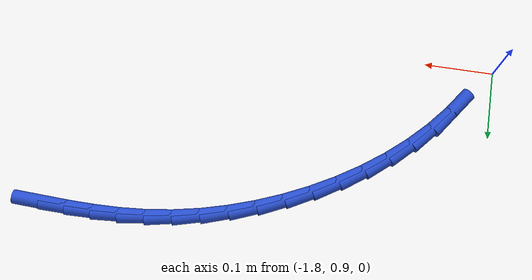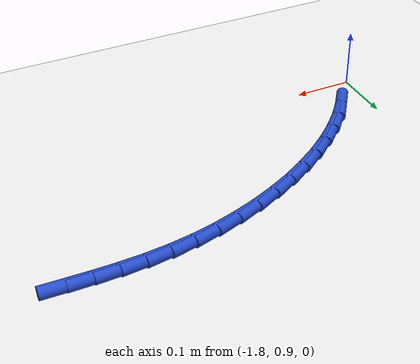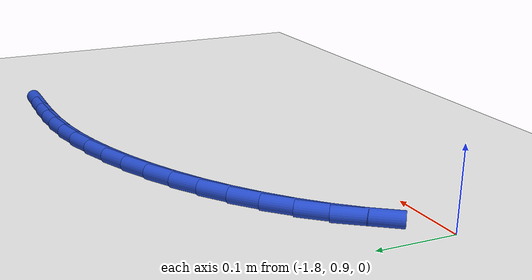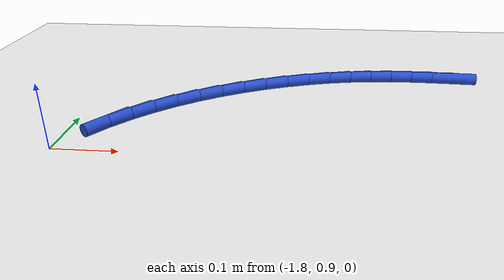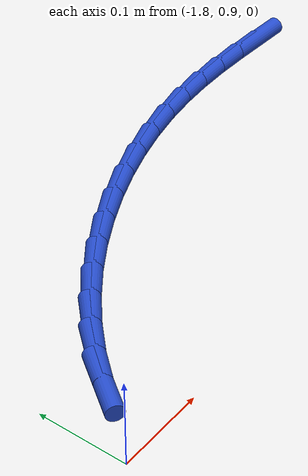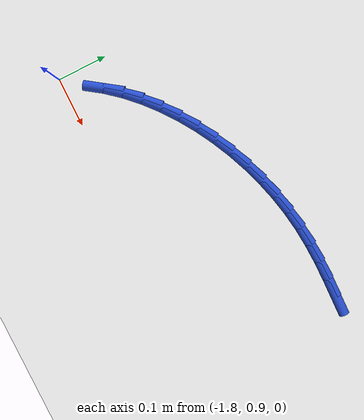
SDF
<sdf version="1.6">
 <world name="default">
  <model name="ground_plane">
   <static>1</static>
   <link name="link">
    <collision name="collision">
     <geometry><plane><normal>0 0 1</normal><size>100 100</size></plane></geometry>
     <surface><friction><ode><mu>100</mu><mu2>50</mu2></ode></friction></surface>
    </collision>
    <visual name="visual">
     <cast_shadows>0</cast_shadows>
     <geometry><plane><normal>0 0 1</normal><size>100 100</size></plane></geometry>
     <material>
      <script><uri>file://media/materials/scripts/gazebo.material</uri><name>Gazebo/WhiteGlow</name></script>
     </material>
    </visual>
   </link>
  </model>
  <model name="line">
   <link name="link_49">
    <pose>-1.1828109221812215 1.1870061378430354 0.01 0 1.57 -0.04526971642761771</pose>
    <collision name="collision">
     <geometry><cylinder><radius>0.01</radius><length>0.08</length></cylinder></geometry>
    </collision>
    <visual name="visual">
     <material>
      <script><name>Gazebo/Blue</name><uri>file://media/materials/scripts/gazebo.material</uri></script>
     </material>
     <geometry><cylinder><radius>0.01</radius><length>0.08</length></cylinder></geometry>
    </visual>
   </link>
   <link name="link_50">
    <pose>-1.2208133053272079 1.1887276711188097 0.01 0 1.57 -0.01781173337337017</pose>
    <collision name="collision">
     <geometry><cylinder><radius>0.01</radius><length>0.08</length></cylinder></geometry>
    </collision>
    <visual name="visual">
     <material>
      <script><name>Gazebo/Blue</name><uri>file://media/materials/scripts/gazebo.material</uri></script>
     </material>
     <geometry><cylinder><radius>0.01</radius><length>0.08</length></cylinder></geometry>
    </visual>
   </link>
   <link name="link_51">
    <pose>-1.2581495444640256 1.189392764592341 0.01 0 1.57 0.021894738039404168</pose>
    <collision name="collision">
     <geometry><cylinder><radius>0.01</radius><length>0.08</length></cylinder></geometry>
    </collision>
    <visual name="visual">
     <material>
      <script><name>Gazebo/Blue</name><uri>file://media/materials/scripts/gazebo.material</uri></script>
     </material>
     <geometry><cylinder><radius>0.01</radius><length>0.08</length></cylinder></geometry>
    </visual>
   </link>
   <link name="link_52">
    <pose>-1.2951561296625478 1.188582385606509 0.01 0 1.57 0.07294879168000383</pose>
    <collision name="collision">
     <geometry><cylinder><radius>0.01</radius><length>0.08</length></cylinder></geometry>
    </collision>
    <visual name="visual">
     <material>
      <script><name>Gazebo/Blue</name><uri>file://media/materials/scripts/gazebo.material</uri></script>
     </material>
     <geometry><cylinder><radius>0.01</radius><length>0.08</length></cylinder></geometry>
    </visual>
   </link>
   <link name="link_53">
    <pose>-1.3321695509936469 1.1858775015041942 0.01 0 1.57 0.13348053454037398</pose>
    <collision name="collision">
     <geometry><cylinder><radius>0.01</radius><length>0.08</length></cylinder></geometry>
    </collision>
    <visual name="visual">
     <material>
      <script><name>Gazebo/Blue</name><uri>file://media/materials/scripts/gazebo.material</uri></script>
     </material>
     <geometry><cylinder><radius>0.01</radius><length>0.08</length></cylinder></geometry>
    </visual>
   </link>
   <link name="link_54">
    <pose>-1.3695227634542462 1.1808617506619292 0.01 0 1.57 0.1975852612919614</pose>
    <collision name="collision">
     <geometry><cylinder><radius>0.01</radius><length>0.08</length></cylinder></geometry>
    </collision>
    <visual name="visual">
     <material>
      <script><name>Gazebo/Blue</name><uri>file://media/materials/scripts/gazebo.material</uri></script>
     </material>
     <geometry><cylinder><radius>0.01</radius><length>0.08</length></cylinder></geometry>
    </visual>
   </link>
   <link name="link_55">
    <pose>-1.4073141362033281 1.1732960199881108 0.01 0 1.57 0.2593633638414282</pose>
    <collision name="collision">
     <geometry><cylinder><radius>0.01</radius><length>0.08</length></cylinder></geometry>
    </collision>
    <visual name="visual">
     <material>
      <script><name>Gazebo/Blue</name><uri>file://media/materials/scripts/gazebo.material</uri></script>
     </material>
     <geometry><cylinder><radius>0.01</radius><length>0.08</length></cylinder></geometry>
    </visual>
   </link>
   <link name="link_56">
    <pose>-1.4452648782610118 1.1632261713132244 0.01 0 1.57 0.319445621223267</pose>
    <collision name="collision">
     <geometry><cylinder><radius>0.01</radius><length>0.08</length></cylinder></geometry>
    </collision>
    <visual name="visual">
     <material>
      <script><name>Gazebo/Blue</name><uri>file://media/materials/scripts/gazebo.material</uri></script>
     </material>
     <geometry><cylinder><radius>0.01</radius><length>0.08</length></cylinder></geometry>
    </visual>
   </link>
   <link name="link_57">
    <pose>-1.483062117451954 1.1507238175613121 0.01 0 1.57 0.3789096621562624</pose>
    <collision name="collision">
     <geometry><cylinder><radius>0.01</radius><length>0.08</length></cylinder></geometry>
    </collision>
    <visual name="visual">
     <material>
      <script><name>Gazebo/Blue</name><uri>file://media/materials/scripts/gazebo.material</uri></script>
     </material>
     <geometry><cylinder><radius>0.01</radius><length>0.08</length></cylinder></geometry>
    </visual>
   </link>
   <link name="link_58">
    <pose>-1.5203929816008117 1.135860571656416 0.01 0 1.57 0.43876163059454654</pose>
    <collision name="collision">
     <geometry><cylinder><radius>0.01</radius><length>0.08</length></cylinder></geometry>
    </collision>
    <visual name="visual">
     <material>
      <script><name>Gazebo/Blue</name><uri>file://media/materials/scripts/gazebo.material</uri></script>
     </material>
     <geometry><cylinder><radius>0.01</radius><length>0.08</length></cylinder></geometry>
    </visual>
   </link>
   <link name="link_59">
    <pose>-1.556944598532242 1.1187080465225778 0.01 0 1.57 0.4999691505312151</pose>
    <collision name="collision">
     <geometry><cylinder><radius>0.01</radius><length>0.08</length></cylinder></geometry>
    </collision>
    <visual name="visual">
     <material>
      <script><name>Gazebo/Blue</name><uri>file://media/materials/scripts/gazebo.material</uri></script>
     </material>
     <geometry><cylinder><radius>0.01</radius><length>0.08</length></cylinder></geometry>
    </visual>
   </link>
   <link name="link_60">
    <pose>-1.5924040960709023 1.0993378550838402 0.01 0 1.57 0.5634870245357481</pose>
    <collision name="collision">
     <geometry><cylinder><radius>0.01</radius><length>0.08</length></cylinder></geometry>
    </collision>
    <visual name="visual">
     <material>
      <script><name>Gazebo/Blue</name><uri>file://media/materials/scripts/gazebo.material</uri></script>
     </material>
     <geometry><cylinder><radius>0.01</radius><length>0.08</length></cylinder></geometry>
    </visual>
   </link>
   <link name="link_61">
    <pose>-1.6264586020414489 1.0778216102642444 0.01 0 1.57 0.6302737982823637</pose>
    <collision name="collision">
     <geometry><cylinder><radius>0.01</radius><length>0.08</length></cylinder></geometry>
    </collision>
    <visual name="visual">
     <material>
      <script><name>Gazebo/Blue</name><uri>file://media/materials/scripts/gazebo.material</uri></script>
     </material>
     <geometry><cylinder><radius>0.01</radius><length>0.08</length></cylinder></geometry>
    </visual>
   </link>
   <link name="link_62">
    <pose>-1.6587952442685392 1.0542309249878328 0.01 0 1.57 0.701295721354656</pose>
    <collision name="collision">
     <geometry><cylinder><radius>0.01</radius><length>0.08</length></cylinder></geometry>
    </collision>
    <visual name="visual">
     <material>
      <script><name>Gazebo/Blue</name><uri>file://media/materials/scripts/gazebo.material</uri></script>
     </material>
     <geometry><cylinder><radius>0.01</radius><length>0.08</length></cylinder></geometry>
    </visual>
   </link>
   <link name="link_63">
    <pose>-1.6891011505768299 1.0286374121786475 0.01 0 1.57 0.7775123248453703</pose>
    <collision name="collision">
     <geometry><cylinder><radius>0.01</radius><length>0.08</length></cylinder></geometry>
    </collision>
    <visual name="visual">
     <material>
      <script><name>Gazebo/Blue</name><uri>file://media/materials/scripts/gazebo.material</uri></script>
     </material>
     <geometry><cylinder><radius>0.01</radius><length>0.08</length></cylinder></geometry>
    </visual>
   </link>
   <link name="link_64">
    <pose>-1.7170634487909786 1.0011126847607306 0.01 0 1.57 0.85983525573951</pose>
    <collision name="collision">
     <geometry><cylinder><radius>0.01</radius><length>0.08</length></cylinder></geometry>
    </collision>
    <visual name="visual">
     <material>
      <script><name>Gazebo/Blue</name><uri>file://media/materials/scripts/gazebo.material</uri></script>
     </material>
     <geometry><cylinder><radius>0.01</radius><length>0.08</length></cylinder></geometry>
    </visual>
   </link>
   <link name="link_65">
    <pose>-1.7423692667356414 0.9717283556581238 0.01 0 1.57 0.9490503693211537</pose>
    <collision name="collision">
     <geometry><cylinder><radius>0.01</radius><length>0.08</length></cylinder></geometry>
    </collision>
    <visual name="visual">
     <material>
      <script><name>Gazebo/Blue</name><uri>file://media/materials/scripts/gazebo.material</uri></script>
     </material>
     <geometry><cylinder><radius>0.01</radius><length>0.08</length></cylinder></geometry>
    </visual>
   </link>
  </model>
 </world>
</sdf>
